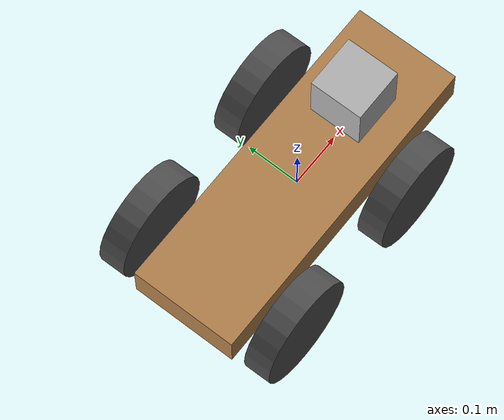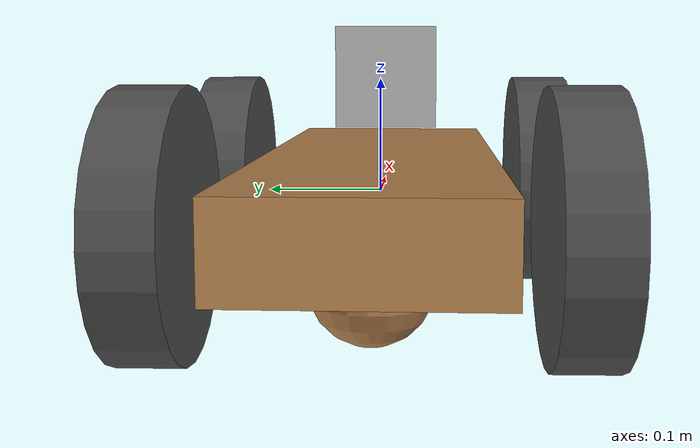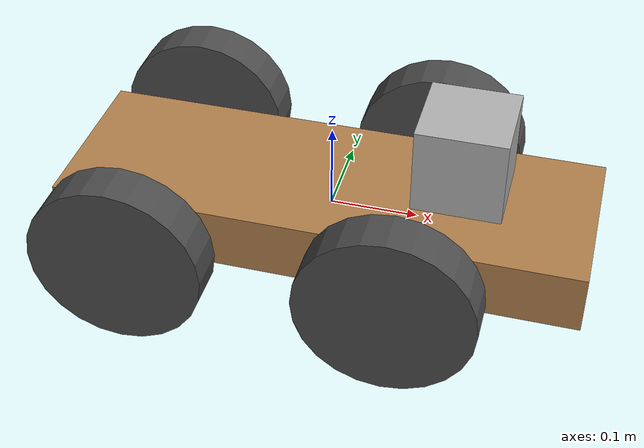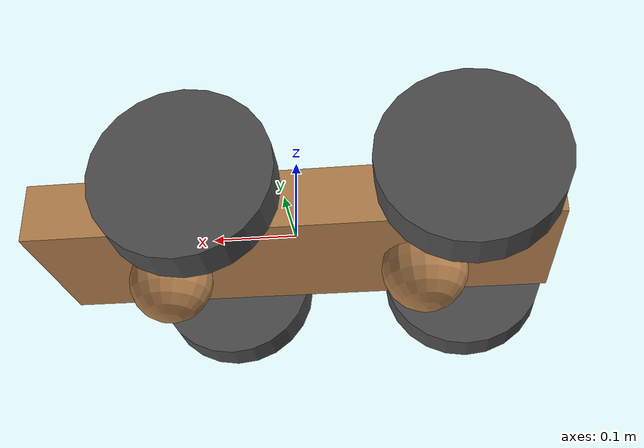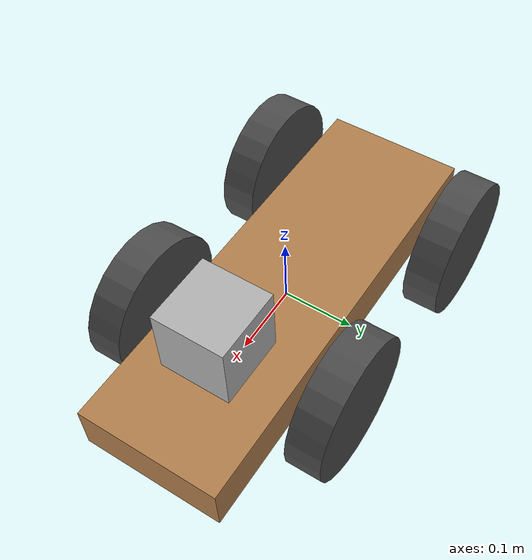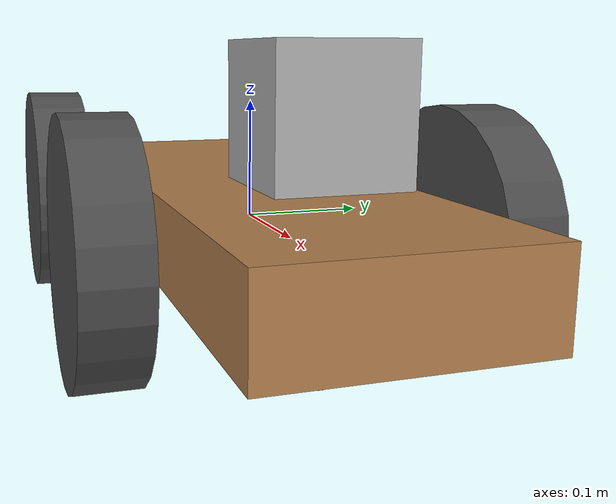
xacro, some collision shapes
<?xml version='1.0'?>

<robot name="my_robot" xmlns:xacro="http://www.ros.org/wiki/xacro">
	<xacro:include filename="$(find my_robot)/urdf/my_robot.gazebo" />

  <link name="robot_footprint"></link>

  <joint name="robot_footprint_joint" type="fixed">
    <origin xyz="0 0 0" rpy="0 0 0" />
    <parent link="robot_footprint"/>
    <child link="chassis" />
  </joint>

  <gazebo reference="chassis">
    <material>Gazebo/Wood</material>
  </gazebo>

  <link name='chassis'>
    <pose>0 0 0.1 0 0 0</pose>

    <inertial>
      <mass value="15.0"/>
      <origin xyz="0.0 0 0" rpy="0 0 0"/>
      <inertia
          ixx="0.1" ixy="0" ixz="0"
          iyy="0.1" iyz="0"
          izz="0.1"
      />
    </inertial>

    <collision name='chassis_collision'>
      <origin xyz="0 0 0" rpy="0 0 0"/>
      <geometry>
        <box size=".4 .2 0.07"/>
      </geometry>
    </collision>

    <visual name='chassis_visual'>
      <origin xyz="0 0 0" rpy="0 0 0"/>
      <geometry>
        <box size=".6 .2 0.07"/>
      </geometry>
    </visual>

    <collision name='back_caster_collision'>
      <origin xyz="-0.15 0 -0.05" rpy="0 0 0"/>
      <geometry>
        <sphere radius="0.0499"/>
      </geometry>
    </collision>

    <visual name='back_caster_visual'>
      <origin xyz="-0.15 0 -0.05" rpy="0 0 0"/>
      <geometry>
        <sphere radius="0.05"/>
      </geometry>
    </visual>

    <collision name='front_caster_collision'>
      <origin xyz="0.15 0 -0.05" rpy=" 0 0 0"/>
      <geometry>
        <sphere radius="0.0499"/>
      </geometry>
    </collision>

    <visual name='front_caster_visual'>
      <origin xyz="0.15 0 -0.05" rpy=" 0 0 0"/>
      <geometry>
        <sphere radius="0.05"/>
      </geometry>
    </visual>

  </link>

  <gazebo reference="left_wheel_front">
    <material>Gazebo/DarkGrey</material>
  </gazebo>

	<link name='left_wheel_front'>

		<inertial>
			<mass value="5"/>
			<origin xyz="0.0 0 0" rpy="0 1.5757 1.5757"/>
			<inertia
				ixx="0.1" ixy="0" ixz="0"
				iyy="0.1" iyz="0"
				izz="0.1"
			/>
		</inertial>

		<collision name='left_wheel_front_collision'>
			<origin xyz="0 0 0" rpy="0 1.5757 1.5757"/>
			<geometry>
				<cylinder radius="0.1" length="0.05"/>
			</geometry>
		</collision>

    <visual name='left_wheel_front_visual'>
      <origin xyz="0 0 0" rpy="0 1.5757 1.5757"/>
      <geometry>
        <cylinder radius="0.1" length="0.05"/>
      </geometry>
    </visual>

	</link>

	<joint type="continuous" name="left_wheel_front_hinge">
    <origin xyz=".1 0.15 0" rpy="0 0 0"/>
    <child link="left_wheel_front"/>
    <parent link="chassis"/>
    <axis xyz="0 1 0" rpy="0 0 0"/>
    <limit effort="10000" velocity="1000"/>
    <dynamics damping="1.0" friction="1.0"/>
  </joint>

  <gazebo reference="left_wheel_back">
    <material>Gazebo/DarkGrey</material>
  </gazebo>

  <link name='left_wheel_back'>

		<inertial>
			<mass value="5"/>
			<origin xyz="0.0 0 0" rpy="0 1.5757 1.5757"/>
			<inertia
				ixx="0.1" ixy="0" ixz="0"
				iyy="0.1" iyz="0"
				izz="0.1"
			/>
		</inertial>

		<collision name='left_wheel_back_collision'>
			<origin xyz="0 0 0" rpy="0 1.5757 1.5757"/>
			<geometry>
				<cylinder radius="0.1" length="0.05"/>
			</geometry>
		</collision>

    <visual name='left_wheel_back_visual'>
      <origin xyz="0 0 0" rpy="0 1.5757 1.5757"/>
      <geometry>
        <cylinder radius="0.1" length="0.05"/>
      </geometry>
    </visual>

	</link>

	<joint type="continuous" name="left_wheel_back_hinge">
    <origin xyz="-.2 0.15 0" rpy="0 0 0"/>
    <child link="left_wheel_back"/>
    <parent link="chassis"/>
    <axis xyz="0 1 0" rpy="0 0 0"/>
    <limit effort="10000" velocity="1000"/>
    <dynamics damping="1.0" friction="1.0"/>
  </joint>

  <gazebo reference="right_wheel_front">
    <material>Gazebo/DarkGrey</material>
  </gazebo>

	<link name='right_wheel_front'>

		<inertial>
			<mass value="5"/>
			<origin xyz="0.0 0 0" rpy="0 1.5757 1.5757"/>
			<inertia
				ixx="0.1" ixy="0" ixz="0"
				iyy="0.1" iyz="0"
				izz="0.1"
			/>
		</inertial>

		<collision name='right_wheel_front_collision'>
			<origin xyz="0 0 0" rpy="0 1.5757 1.5757"/>
			<geometry>
				<cylinder radius="0.1" length="0.05"/>
			</geometry>
		</collision>

    <visual name='right_wheel_front_visual'>
      <origin xyz="0 0 0" rpy="0 1.5757 1.5757"/>
      <geometry>
        <cylinder radius="0.1" length="0.05"/>
      </geometry>
    </visual>

	</link>

  <joint type="continuous" name="right_wheel_front_hinge">
    <origin xyz=".1 -0.15 0" rpy="0 0 0"/>
    <child link="right_wheel_front"/>
    <parent link="chassis"/>
    <axis xyz="0 1 0" rpy="0 0 0"/>
    <limit effort="10000" velocity="1000"/>
    <dynamics damping="1.0" friction="1.0"/>
  </joint>

  <gazebo reference="right_wheel_back">
    <material>Gazebo/DarkGrey</material>
  </gazebo>

  <link name='right_wheel_back'>

		<inertial>
			<mass value="5"/>
			<origin xyz="0.0 0 0" rpy="0 1.5757 1.5757"/>
			<inertia
				ixx="0.1" ixy="0" ixz="0"
				iyy="0.1" iyz="0"
				izz="0.1"
			/>
		</inertial>

		<collision name='right_wheel_back_collision'>
			<origin xyz="0 0 0" rpy="0 1.5757 1.5757"/>
			<geometry>
				<cylinder radius="0.1" length="0.05"/>
			</geometry>
		</collision>

    <visual name='right_wheel_back_visual'>
      <origin xyz="0 0 0" rpy="0 1.5757 1.5757"/>
      <geometry>
        <cylinder radius="0.1" length="0.05"/>
      </geometry>
    </visual>

	</link>

  <joint type="continuous" name="right_wheel_back_hinge">
    <origin xyz="-.2 -0.15 0" rpy="0 0 0"/>
    <child link="right_wheel_back"/>
    <parent link="chassis"/>
    <axis xyz="0 1 0" rpy="0 0 0"/>
    <limit effort="10000" velocity="1000"/>
    <dynamics damping="1.0" friction="1.0"/>
  </joint>

	<link name='camera'>

		<inertial>
			<mass value="0.1"/>
			<origin xyz="0.05 0.05 0.05" rpy=" 0 0 0"/>
			<inertia
				ixx="1e-6" ixy="0" ixz="0"
				iyy="1e-6" iyz="0"
				izz="1e-6"
			/>
		</inertial>

		<collision name="camera_collision">
			<origin xyz="0 0 0" rpy=" 0 0 0"/>
			<geometry>
				<box size="0.05 0.05 0.05"/>
			</geometry>
		</collision>

    <visual name="camera_visual">
      <origin xyz="0 0 0" rpy=" 0 0 0"/>
      <geometry>
        <box size="0.05 0.05 0.05"/>
      </geometry>
    </visual>

	</link>

	<joint type="fixed" name="camera_joint">
		<axis xyz="0 1 0" />
    <origin xyz="0.2 0 0" rpy="0 0 0"/>
    <child link="camera"/>
    <parent link="chassis"/>
  </joint>

	<link name='hokuyo'>

		<inertial>
			<mass value="1e-5"/>
			<origin xyz="0.05 0.05 0.05" rpy=" 0 0 0"/>
			<inertia
				ixx="1e-6" ixy="0" ixz="0"
				iyy="1e-6" iyz="0"
				izz="1e-6"
			/>
		</inertial>

		<collision>
			<origin xyz="0 0 0" rpy="0 0 0"/>
			<geometry>
				<box size="0.1 0.1 0.1"/>
			</geometry>
		</collision>

    <visual>
      <origin xyz="0 0 0" rpy="0 0 0"/>
      <geometry>
				 <mesh filename="package://my_robot/meshes/hokuyo.dae"/>
      </geometry>
    </visual>

	</link>

	<joint type="fixed" name="hokuyo_joint">
		<axis xyz="0 1 0" />
    <origin xyz="0.15 0 0.1" rpy="0 0 0"/>
    <child link="hokuyo"/>
    <parent link="chassis"/>
  </joint>

</robot>
